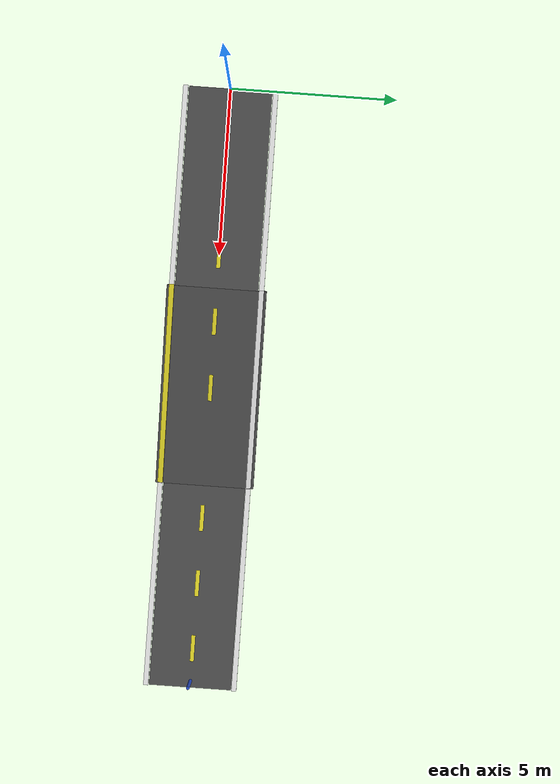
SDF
<?xml version="1.0"?>
<sdf version="1.6">
  <world name="road_downslope_world">

    <include><uri>model://sun</uri></include>

    <!-- ============== CONTINUOUS ROAD COLLISION (single body) ============= -->
    <model name="road_collision">
      <static>true</static>
      <link name="link">
        <pose>0 1.5 0 1.5707963 0 0</pose>
        <collision name="collision">
          <geometry>
            <polyline>
              <!-- bottom edge (well below the lowest road point) -->
              <point>0 -1.5</point>
              <point>18.2 -1.5</point>
              <!-- up the right side to the lower-flat top surface -->
              <point>18.2 -0.843245</point>
              <!-- lower flat traversed high-x -> low-x at y = -0.843245 -->
              <point>13.0 -0.843245</point>
              <point>12.8 -0.841840</point>
              <point>12.6 -0.837623</point>
              <point>12.4 -0.830596</point>
              <point>12.2 -0.820759</point>
              <point>12.0 -0.808110</point>
              <point>11.8 -0.792651</point>
              <point>11.6 -0.774380</point>
              <point>11.4 -0.753299</point>
              <point>11.2 -0.729408</point>
              <point>11.0 -0.702705</point>
              <!-- straight 8 deg decline, from the foot fillet up to the brow
                   fillet (single segment 11.0 -> 7.0) -->
              <point>7.0 -0.14054</point>
              <point>6.5 -0.07905</point>
              <point>6.0 -0.03514</point>
              <point>5.5 -0.00878</point>
              <point>5.0 0</point>
              <!-- upper flat back to the origin -->
              <point>0 0</point>
              <height>3.0</height>
            </polyline>
          </geometry>
          <surface>
            <friction><ode><mu>100.0</mu><mu2>100.0</mu2></ode></friction>
            <contact><ode><kp>1e6</kp><kd>1.0</kd><min_depth>0.001</min_depth></ode></contact>
          </surface>
        </collision>
      </link>
    </model>

    <physics type="ode">
      <max_step_size>0.001</max_step_size>
      <real_time_factor>1.0</real_time_factor>
      <real_time_update_rate>1000</real_time_update_rate>
    </physics>

    <!-- ================= UPPER FLAT VISUALS (x 0-6, z=0) ================= -->
    <model name="road_flat">
      <static>true</static>
      <link name="link">
        <visual name="surface">
          <pose>3.0 0 0.002 0 0 0</pose>
          <geometry><box><size>6.0 2.5 0.004</size></box></geometry>
          <material><script><name>Gazebo/DarkGrey</name></script></material>
        </visual>
        <visual name="kerb_left">
          <pose>3.0 1.35 0.05 0 0 0</pose>
          <geometry><box><size>6.0 0.15 0.10</size></box></geometry>
          <material><script><name>Gazebo/White</name></script></material>
        </visual>
        <visual name="kerb_right">
          <pose>3.0 -1.35 0.05 0 0 0</pose>
          <geometry><box><size>6.0 0.15 0.10</size></box></geometry>
          <material><script><name>Gazebo/White</name></script></material>
        </visual>
        <visual name="dash_1">
          <pose>1.0 0 0.005 0 0 0</pose>
          <geometry><box><size>0.8 0.12 0.004</size></box></geometry>
          <material><script><name>Gazebo/Yellow</name></script></material>
        </visual>
        <visual name="dash_2">
          <pose>3.0 0 0.005 0 0 0</pose>
          <geometry><box><size>0.8 0.12 0.004</size></box></geometry>
          <material><script><name>Gazebo/Yellow</name></script></material>
        </visual>
        <visual name="dash_3">
          <pose>5.0 0 0.005 0 0 0</pose>
          <geometry><box><size>0.8 0.12 0.004</size></box></geometry>
          <material><script><name>Gazebo/Yellow</name></script></material>
        </visual>
      </link>
    </model>

    <!-- ============ DECLINE (x 6-12, 8 deg downhill, VISUAL only) ======== -->
    <model name="decline">
      <static>true</static>
      <link name="link">
        <visual name="visual">
          <pose>8.979 0 -0.570168 0 0.139626 0</pose>
          <geometry><box><size>6.06 3.0 0.30</size></box></geometry>
          <material><script><name>Gazebo/DarkGrey</name></script></material>
        </visual>
        <visual name="kerb_left">
          <pose>8.979 1.35 -0.361 0 0.139626 0</pose>
          <geometry><box><size>6.06 0.15 0.10</size></box></geometry>
          <material><script><name>Gazebo/White</name></script></material>
        </visual>
        <visual name="kerb_right">
          <pose>8.979 -1.35 -0.361 0 0.139626 0</pose>
          <geometry><box><size>6.06 0.15 0.10</size></box></geometry>
          <material><script><name>Gazebo/Yellow</name></script></material>
        </visual>
        <visual name="dash_1">
          <pose>7.0 0 -0.1265 0 0.139626 0</pose>
          <geometry><box><size>0.8 0.12 0.004</size></box></geometry>
          <material><script><name>Gazebo/Yellow</name></script></material>
        </visual>
        <visual name="dash_2">
          <pose>9.0 0 -0.4216 0 0.139626 0</pose>
          <geometry><box><size>0.8 0.12 0.004</size></box></geometry>
          <material><script><name>Gazebo/Yellow</name></script></material>
        </visual>
        <visual name="dash_3">
          <pose>11.0 0 -0.7167 0 0.139626 0</pose>
          <geometry><box><size>0.8 0.12 0.004</size></box></geometry>
          <material><script><name>Gazebo/Yellow</name></script></material>
        </visual>
      </link>
    </model>

    <!-- ============ LOWER FLAT (x 12-18.2, z=-0.843245, VISUAL) ========== -->
    <!-- A solid fill box (top at z=-0.841) hides the gap under the descent,
         plus a thin road surface and kerbs/dashes on top. -->
    <model name="lower_flat">
      <static>true</static>
      <link name="link">
        <visual name="fill">
          <pose>15.1 0 -1.171623 0 0 0</pose>
          <geometry><box><size>6.2 2.5 0.656754</size></box></geometry>
          <material><script><name>Gazebo/Grey</name></script></material>
        </visual>
        <visual name="surface">
          <pose>15.1 0 -0.841 0 0 0</pose>
          <geometry><box><size>6.2 2.5 0.004</size></box></geometry>
          <material><script><name>Gazebo/DarkGrey</name></script></material>
        </visual>
        <visual name="kerb_left">
          <pose>15.1 1.35 -0.793245 0 0 0</pose>
          <geometry><box><size>6.2 0.15 0.10</size></box></geometry>
          <material><script><name>Gazebo/White</name></script></material>
        </visual>
        <visual name="kerb_right">
          <pose>15.1 -1.35 -0.793245 0 0 0</pose>
          <geometry><box><size>6.2 0.15 0.10</size></box></geometry>
          <material><script><name>Gazebo/White</name></script></material>
        </visual>
        <visual name="dash_1">
          <pose>13.0 0 -0.839 0 0 0</pose>
          <geometry><box><size>0.8 0.12 0.004</size></box></geometry>
          <material><script><name>Gazebo/Yellow</name></script></material>
        </visual>
        <visual name="dash_2">
          <pose>15.0 0 -0.839 0 0 0</pose>
          <geometry><box><size>0.8 0.12 0.004</size></box></geometry>
          <material><script><name>Gazebo/Yellow</name></script></material>
        </visual>
        <visual name="dash_3">
          <pose>17.0 0 -0.839 0 0 0</pose>
          <geometry><box><size>0.8 0.12 0.004</size></box></geometry>
          <material><script><name>Gazebo/Yellow</name></script></material>
        </visual>
      </link>
    </model>

    <!-- ================= START / END POSTS (visual only) =============== -->
    <model name="start_post">
      <static>true</static>
      <link name="link">
        <visual name="visual">
          <pose>0 0 0.5 0 0 0</pose>
          <geometry><cylinder><radius>0.05</radius><length>1.0</length></cylinder></geometry>
          <material><script><name>Gazebo/Red</name></script></material>
        </visual>
      </link>
    </model>

    <model name="end_post">
      <static>true</static>
      <link name="link">
        <visual name="visual">
          <pose>18.0 0 -0.343245 0 0 0</pose>
          <geometry><cylinder><radius>0.05</radius><length>1.0</length></cylinder></geometry>
          <material><script><name>Gazebo/Blue</name></script></material>
        </visual>
      </link>
    </model>

  </world>
</sdf>
